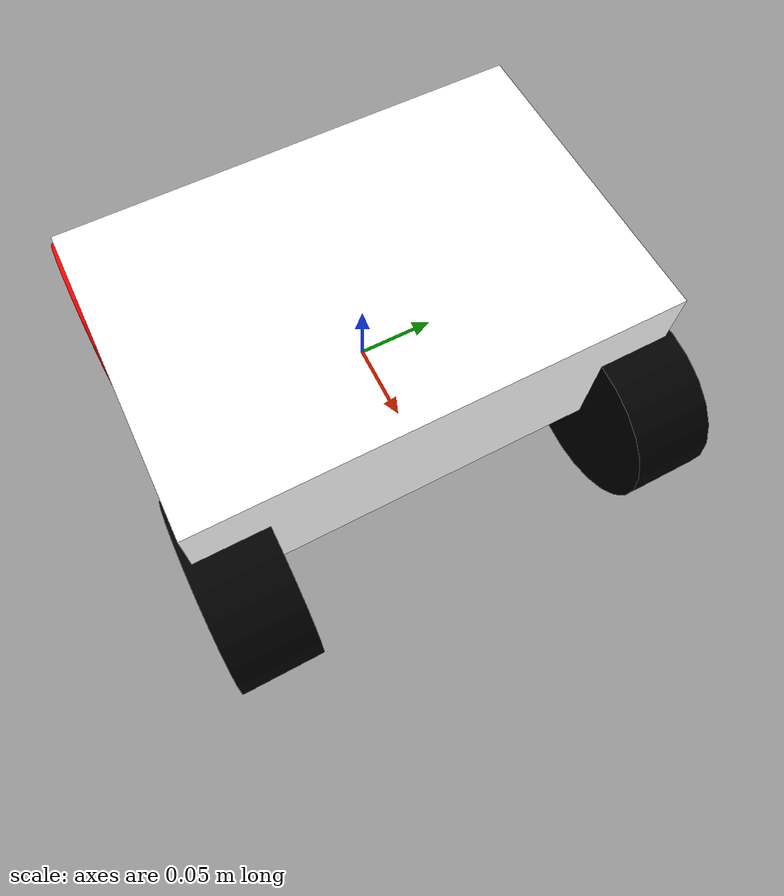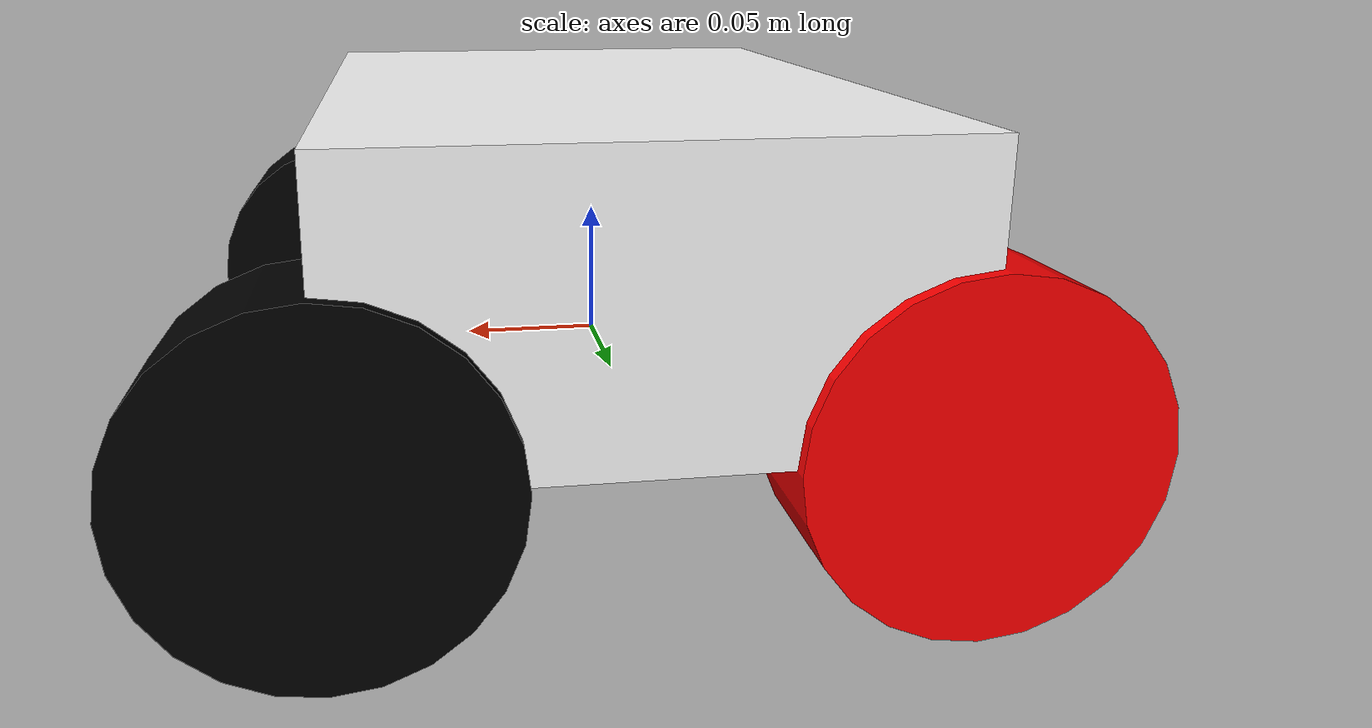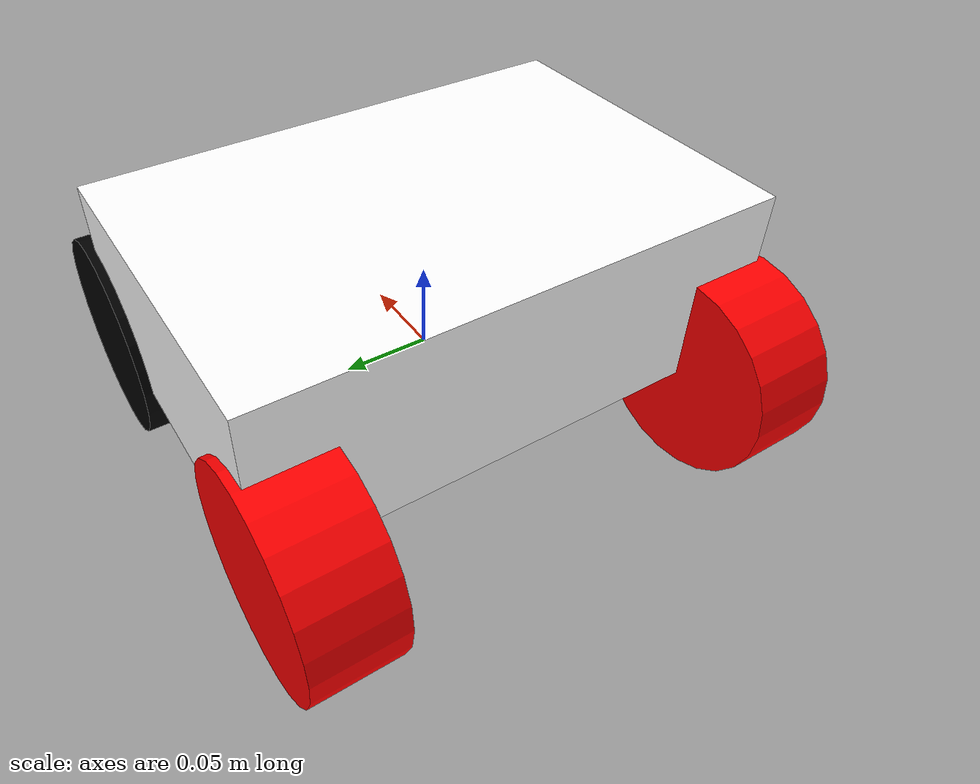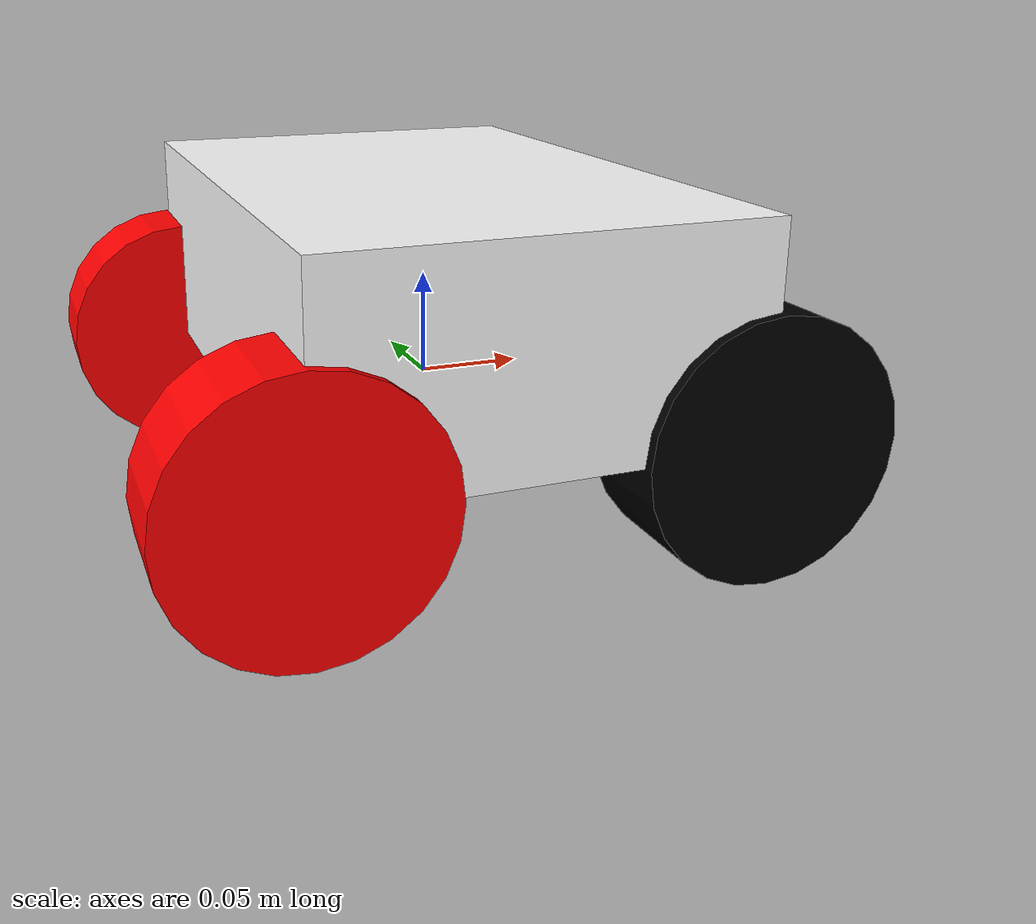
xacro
<robot name="sentry_base" xmlns:xacro="http://www.ros.org/wiki/xacro">
    <!-- Defining the colors used in this robot  -->
    <material name="Black">
        <color rgba="0 0 0 1" />
    </material>

    <material name="White">
        <color rgba="1 1 1 1" />
    </material>

    <material name="Blue">
        <color rgba="0 0 1 1" />
    </material>

    <material name="Red">
        <color rgba="1 0 0 1" />
    </material>

    <material name="Brown">
        <color rgba="0.647 0.165 0.165 1" />
    </material>

    <xacro:property name="PI" value="3.1415926" />
	<xacro:property name="length_wheel" value="0.05" />
	<xacro:property name="radius_wheel" value="0.06" />
    <xacro:property name="mass_wheel" value="150" />
    <xacro:property name="mass_baselink" value="250" />

    <!-- Inertial matrix  -->
    <xacro:macro name="inertial_matrix" params="mass">
        <inertial>
            <mass value="${mass}" />
            <origin xyz="0 0 0" rpy="0 0 0" />
            <inertia ixx="2.3319" ixy="3.6592E-17" ixz="-4.7325E-18"
                     iyy="2.4738" iyz="-2.8587E-19" izz="4.7802" />
        </inertial>
    </xacro:macro>

    <xacro:macro name="gazebo_material" params="ref color">
        <gazebo reference="${ref}">
            <pose>0 0 0 0 0 0</pose>
            <material>Gazebo/${color}</material>
        </gazebo>
    </xacro:macro>

    <!-- //////////////////////////////// all base links of sentry ////////////////////////////////// -->
    <link name="dummy" />

    <link name="base_footprint">
        <visual>
            <origin xyz="0 0 0" rpy="0 0 0" />
            <geometry>
                <box size="0.001 0.001 0.001" />
            </geometry>
            <material name="Blue" />
        </visual>
        <collision>
            <origin xyz="0 0 0" rpy="0 0 0" />
            <geometry>
                <box size="0.1 0.1 0.1" />
            </geometry>
        </collision>
        <xacro:inertial_matrix mass="0.000001"/>
    </link>

    <link name="base_link">
        <visual>
            <origin xyz="0 0 0.05" rpy="0 0 0"/>
            <geometry>
                <box size="0.2 0.3 0.1"/>
            </geometry>
            <material name="White" />
        </visual>
        <collision>
            <origin xyz="0 0 0.05" rpy="0 0 0"/>
            <geometry>
                <box size="0.3 0.2 0.15"/>
            </geometry>
        </collision>
        <xacro:inertial_matrix mass="${mass_baselink}" />
    </link>

    <link name="left_front_wheel">
        <visual>
            <origin xyz="0 0 0" rpy="0 0 0" />
            <geometry>
                <cylinder radius="${radius_wheel}" length="${length_wheel}" />
            </geometry>
            <material name="Black" />
        </visual>
        <collision>
            <origin xyz="0 0 0" rpy="0 0 0" />
            <geometry>
                <cylinder radius="${radius_wheel}" length="${length_wheel}" />
            </geometry>
        </collision>
        <xacro:inertial_matrix mass="${mass_wheel}" />
    </link>

    <link name="right_front_wheel">
        <visual>
            <origin xyz="0 0 0" rpy="0 0 0" />
            <geometry>
                <cylinder radius="${radius_wheel}" length="${length_wheel}" />
            </geometry>
            <material name="Black" />
        </visual>
        <collision>
            <origin xyz="0 0 0" rpy="0 0 0" />
            <geometry>
                <cylinder radius="${radius_wheel}" length="${length_wheel}" />
            </geometry>
        </collision>
        <xacro:inertial_matrix mass="${mass_wheel}" />
    </link>

    <link name="left_rear_wheel">
        <visual>
            <origin xyz="0 0 0" rpy="0 0 0" />
            <geometry>
                <cylinder radius="${radius_wheel}" length="${length_wheel}" />
            </geometry>
            <material name="Red" />
        </visual>
        <collision>
            <origin xyz="0 0 0" rpy="0 0 0" />
            <geometry>
                <cylinder radius="${radius_wheel}" length="${length_wheel}" />
            </geometry>
        </collision>
        <xacro:inertial_matrix mass="${mass_wheel}" />
    </link>

    <link name="right_rear_wheel">
        <visual>
            <origin xyz="0 0 0" rpy="0 0 0" />
            <geometry>
                <cylinder radius="${radius_wheel}" length="${length_wheel}" />
            </geometry>
            <material name="Red" />
        </visual>
        <collision>
            <origin xyz="0 0 0" rpy="0 0 0" />
            <geometry>
                <cylinder radius="${radius_wheel}" length="${length_wheel}" />
            </geometry>
        </collision>
        <xacro:inertial_matrix mass="${mass_wheel}" />
    </link>

    <!-- //////////////////////////////// all joints ////////////////////////////////// -->
    <joint name="dummy_joint" type="fixed">
        <parent link="dummy" />
        <child link="base_footprint" />
    </joint>

	<joint name="base_footprint_joint" type="fixed">
		<origin xyz="0 0 0" />
		<parent link="base_footprint" />
		<child link="base_link" />
	</joint>

    <joint name="base_to_wheel1" type="continuous">
        <axis xyz="0 0 1" />
        <anchor xyz="0 0 0" />
        <limit effort="100" velocity="100" />
        <parent link="base_link"/>
        <child link="left_front_wheel"/>
        <origin rpy="${-PI/2} 0 0" xyz="0.1 0.13 0"/>
    </joint>

    <joint name="base_to_wheel2" type="continuous">
        <axis xyz="0 0 1" />
        <anchor xyz="0 0 0" />
        <limit effort="100" velocity="100" />
        <parent link="base_link"/>
        <child link="left_rear_wheel"/>
        <origin rpy="${-PI/2} 0 0" xyz="-0.1 0.13 0"/>
    </joint>

    <joint name="base_to_wheel3" type="continuous">
        <axis xyz="0 0 1" />
        <anchor xyz="0 0 0" />
        <limit effort="100" velocity="100" />
        <parent link="base_link"/>
        <child link="right_front_wheel"/>
        <origin rpy="${-PI/2} 0 0" xyz="0.1 -0.13 0"/>
    </joint>

    <joint name="base_to_wheel4" type="continuous">
        <axis xyz="0 0 1" />
        <anchor xyz="0 0 0" />
        <limit effort="100" velocity="100" />
        <parent link="base_link"/>
        <child link="right_rear_wheel"/>
        <origin rpy="${-PI/2} 0 0" xyz="-0.1 -0.13 0"/>
    </joint>

    <!-- //////////////////////////////// gazebo ////////////////////////////////// -->
    <xacro:gazebo_material ref="base_footprint"    color="White" />
    <xacro:gazebo_material ref="base_link"         color="Orange" />
    <xacro:gazebo_material ref="left_front_wheel"  color="Black" />
    <xacro:gazebo_material ref="right_front_wheel" color="Black" />
    <xacro:gazebo_material ref="left_rear_wheel"   color="Red" />
    <xacro:gazebo_material ref="right_rear_wheel"  color="Red" />

    <!-- //// ////////////////////////////// driver controller //////////////////////////////////  -->
    <gazebo>
        <plugin name="mecanum_controller" filename="libgazebo_ros_planar_move.so">
            <always_on>true</always_on>
            <updateRate>100.0</updateRate>
            <robotNamespace>/</robotNamespace>
            <commandTopic>cmd_vel</commandTopic>
            <odometryTopic>odom</odometryTopic>
            <odometryFrame>odom</odometryFrame>
            <leftFrontJoint>base_to_wheel1</leftFrontJoint>
            <rightFrontJoint>base_to_wheel3</rightFrontJoint>
            <leftRearJoint>base_to_wheel2</leftRearJoint>
            <rightRearJoint>base_to_wheel4</rightRearJoint>
            <wheelSeparation>0.26</wheelSeparation>
            <wheelDiameter>0.12</wheelDiameter>
            <odometryRate>20.0</odometryRate>
            <torque>2</torque>
            <robotBaseFrame>base_footprint</robotBaseFrame>
            <publishOdomTF>true</publishOdomTF>
            <broadcastTF>true</broadcastTF>
            <cmdTimeout>1.0</cmdTimeout>
        </plugin>
    </gazebo>

</robot>
